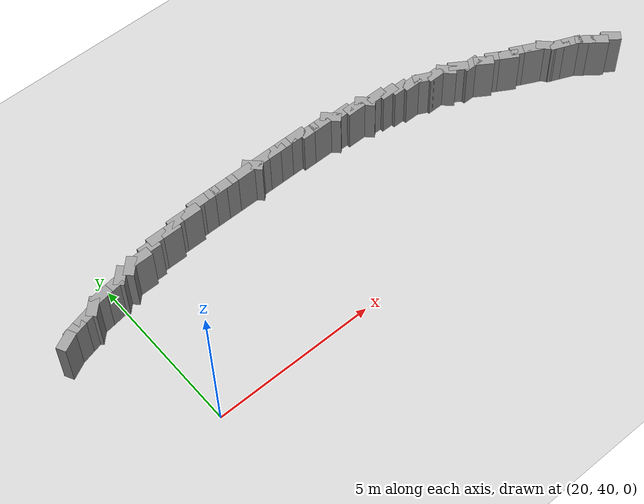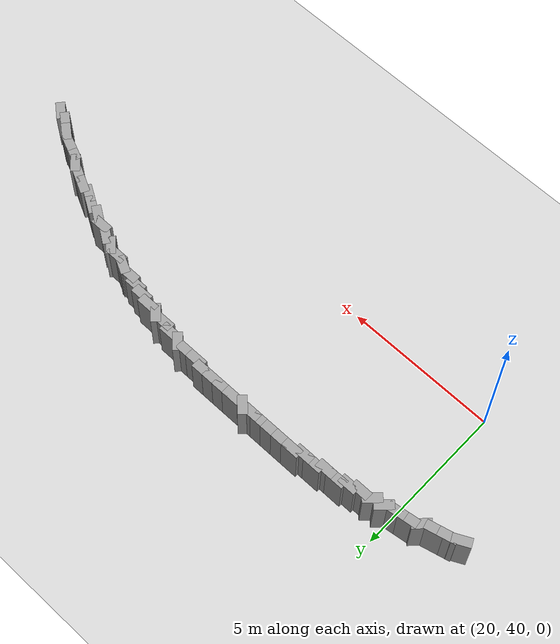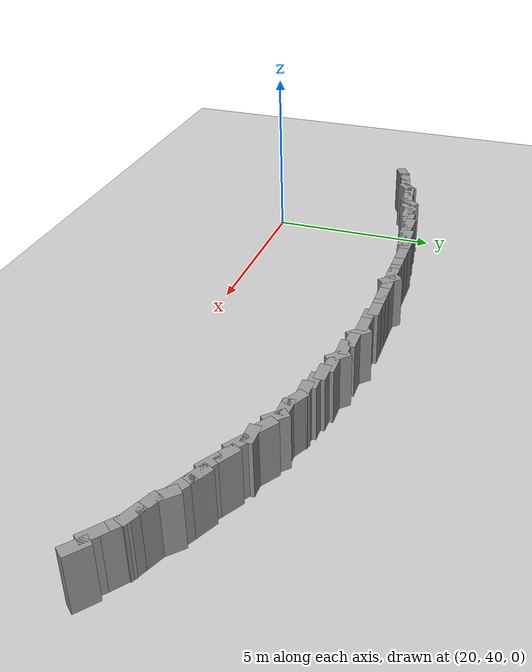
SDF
<sdf version="1.5">
 <world name="test_figure8">
  <include><uri>model://sun</uri></include>
  <include><uri>model://ground_plane</uri></include>
  <model name="curbL_397">
   <static>true</static>
   <pose>36.046 41.662 0.750 0 0 2.447</pose>
   <link name="link">
    <collision name="collision"><geometry><box><size>0.600 0.300 1.500</size></box></geometry></collision>
    <visual name="visual">
     <geometry><box><size>0.600 0.300 1.500</size></box></geometry>
     <material><ambient>0.6 0.6 0.6 1</ambient><diffuse>0.6 0.6 0.6 1</diffuse></material>
    </visual>
   </link>
  </model>
  <model name="curbL_398">
   <static>true</static>
   <pose>35.681 41.815 0.750 0 0 2.467</pose>
   <link name="link">
    <collision name="collision"><geometry><box><size>0.600 0.300 1.500</size></box></geometry></collision>
    <visual name="visual">
     <geometry><box><size>0.600 0.300 1.500</size></box></geometry>
     <material><ambient>0.6 0.6 0.6 1</ambient><diffuse>0.6 0.6 0.6 1</diffuse></material>
    </visual>
   </link>
  </model>
  <model name="curbL_399">
   <static>true</static>
   <pose>35.369 42.065 0.750 0 0 2.467</pose>
   <link name="link">
    <collision name="collision"><geometry><box><size>0.600 0.300 1.500</size></box></geometry></collision>
    <visual name="visual">
     <geometry><box><size>0.600 0.300 1.500</size></box></geometry>
     <material><ambient>0.6 0.6 0.6 1</ambient><diffuse>0.6 0.6 0.6 1</diffuse></material>
    </visual>
   </link>
  </model>
  <model name="curbL_400">
   <static>true</static>
   <pose>35.031 42.272 0.750 0 0 2.737</pose>
   <link name="link">
    <collision name="collision"><geometry><box><size>0.600 0.300 1.500</size></box></geometry></collision>
    <visual name="visual">
     <geometry><box><size>0.600 0.300 1.500</size></box></geometry>
     <material><ambient>0.6 0.6 0.6 1</ambient><diffuse>0.6 0.6 0.6 1</diffuse></material>
    </visual>
   </link>
  </model>
  <model name="curbL_401">
   <static>true</static>
   <pose>34.664 42.430 0.750 0 0 2.737</pose>
   <link name="link">
    <collision name="collision"><geometry><box><size>0.600 0.300 1.500</size></box></geometry></collision>
    <visual name="visual">
     <geometry><box><size>0.600 0.300 1.500</size></box></geometry>
     <material><ambient>0.6 0.6 0.6 1</ambient><diffuse>0.6 0.6 0.6 1</diffuse></material>
    </visual>
   </link>
  </model>
  <model name="curbL_402">
   <static>true</static>
   <pose>34.343 42.657 0.750 0 0 2.356</pose>
   <link name="link">
    <collision name="collision"><geometry><box><size>0.600 0.300 1.500</size></box></geometry></collision>
    <visual name="visual">
     <geometry><box><size>0.600 0.300 1.500</size></box></geometry>
     <material><ambient>0.6 0.6 0.6 1</ambient><diffuse>0.6 0.6 0.6 1</diffuse></material>
    </visual>
   </link>
  </model>
  <model name="curbL_403">
   <static>true</static>
   <pose>33.997 42.852 0.750 0 0 2.678</pose>
   <link name="link">
    <collision name="collision"><geometry><box><size>0.600 0.300 1.500</size></box></geometry></collision>
    <visual name="visual">
     <geometry><box><size>0.600 0.300 1.500</size></box></geometry>
     <material><ambient>0.6 0.6 0.6 1</ambient><diffuse>0.6 0.6 0.6 1</diffuse></material>
    </visual>
   </link>
  </model>
  <model name="curbL_404">
   <static>true</static>
   <pose>33.639 43.031 0.750 0 0 2.678</pose>
   <link name="link">
    <collision name="collision"><geometry><box><size>0.600 0.300 1.500</size></box></geometry></collision>
    <visual name="visual">
     <geometry><box><size>0.600 0.300 1.500</size></box></geometry>
     <material><ambient>0.6 0.6 0.6 1</ambient><diffuse>0.6 0.6 0.6 1</diffuse></material>
    </visual>
   </link>
  </model>
  <model name="curbL_405">
   <static>true</static>
   <pose>33.262 43.123 0.750 0 0 2.601</pose>
   <link name="link">
    <collision name="collision"><geometry><box><size>0.600 0.300 1.500</size></box></geometry></collision>
    <visual name="visual">
     <geometry><box><size>0.600 0.300 1.500</size></box></geometry>
     <material><ambient>0.6 0.6 0.6 1</ambient><diffuse>0.6 0.6 0.6 1</diffuse></material>
    </visual>
   </link>
  </model>
  <model name="curbL_406">
   <static>true</static>
   <pose>32.919 43.329 0.750 0 0 2.601</pose>
   <link name="link">
    <collision name="collision"><geometry><box><size>0.600 0.300 1.500</size></box></geometry></collision>
    <visual name="visual">
     <geometry><box><size>0.600 0.300 1.500</size></box></geometry>
     <material><ambient>0.6 0.6 0.6 1</ambient><diffuse>0.6 0.6 0.6 1</diffuse></material>
    </visual>
   </link>
  </model>
  <model name="curbL_407">
   <static>true</static>
   <pose>32.549 43.434 0.750 0 0 2.554</pose>
   <link name="link">
    <collision name="collision"><geometry><box><size>0.600 0.300 1.500</size></box></geometry></collision>
    <visual name="visual">
     <geometry><box><size>0.600 0.300 1.500</size></box></geometry>
     <material><ambient>0.6 0.6 0.6 1</ambient><diffuse>0.6 0.6 0.6 1</diffuse></material>
    </visual>
   </link>
  </model>
  <model name="curbL_408">
   <static>true</static>
   <pose>32.199 43.600 0.750 0 0 3.142</pose>
   <link name="link">
    <collision name="collision"><geometry><box><size>0.600 0.300 1.500</size></box></geometry></collision>
    <visual name="visual">
     <geometry><box><size>0.600 0.300 1.500</size></box></geometry>
     <material><ambient>0.6 0.6 0.6 1</ambient><diffuse>0.6 0.6 0.6 1</diffuse></material>
    </visual>
   </link>
  </model>
  <model name="curbL_409">
   <static>true</static>
   <pose>31.849 43.767 0.750 0 0 2.554</pose>
   <link name="link">
    <collision name="collision"><geometry><box><size>0.600 0.300 1.500</size></box></geometry></collision>
    <visual name="visual">
     <geometry><box><size>0.600 0.300 1.500</size></box></geometry>
     <material><ambient>0.6 0.6 0.6 1</ambient><diffuse>0.6 0.6 0.6 1</diffuse></material>
    </visual>
   </link>
  </model>
  <model name="curbL_410">
   <static>true</static>
   <pose>31.501 43.899 0.750 0 0 2.356</pose>
   <link name="link">
    <collision name="collision"><geometry><box><size>0.600 0.300 1.500</size></box></geometry></collision>
    <visual name="visual">
     <geometry><box><size>0.600 0.300 1.500</size></box></geometry>
     <material><ambient>0.6 0.6 0.6 1</ambient><diffuse>0.6 0.6 0.6 1</diffuse></material>
    </visual>
   </link>
  </model>
  <model name="curbL_411">
   <static>true</static>
   <pose>31.142 44.000 0.750 0 0 3.142</pose>
   <link name="link">
    <collision name="collision"><geometry><box><size>0.600 0.300 1.500</size></box></geometry></collision>
    <visual name="visual">
     <geometry><box><size>0.600 0.300 1.500</size></box></geometry>
     <material><ambient>0.6 0.6 0.6 1</ambient><diffuse>0.6 0.6 0.6 1</diffuse></material>
    </visual>
   </link>
  </model>
  <model name="curbL_412">
   <static>true</static>
   <pose>30.769 44.115 0.750 0 0 2.678</pose>
   <link name="link">
    <collision name="collision"><geometry><box><size>0.600 0.300 1.500</size></box></geometry></collision>
    <visual name="visual">
     <geometry><box><size>0.600 0.300 1.500</size></box></geometry>
     <material><ambient>0.6 0.6 0.6 1</ambient><diffuse>0.6 0.6 0.6 1</diffuse></material>
    </visual>
   </link>
  </model>
  <model name="curbL_413">
   <static>true</static>
   <pose>30.389 44.200 0.750 0 0 3.142</pose>
   <link name="link">
    <collision name="collision"><geometry><box><size>0.600 0.300 1.500</size></box></geometry></collision>
    <visual name="visual">
     <geometry><box><size>0.600 0.300 1.500</size></box></geometry>
     <material><ambient>0.6 0.6 0.6 1</ambient><diffuse>0.6 0.6 0.6 1</diffuse></material>
    </visual>
   </link>
  </model>
  <model name="curbL_414">
   <static>true</static>
   <pose>30.031 44.300 0.750 0 0 3.142</pose>
   <link name="link">
    <collision name="collision"><geometry><box><size>0.600 0.300 1.500</size></box></geometry></collision>
    <visual name="visual">
     <geometry><box><size>0.600 0.300 1.500</size></box></geometry>
     <material><ambient>0.6 0.6 0.6 1</ambient><diffuse>0.6 0.6 0.6 1</diffuse></material>
    </visual>
   </link>
  </model>
  <model name="curbL_415">
   <static>true</static>
   <pose>29.672 44.400 0.750 0 0 3.142</pose>
   <link name="link">
    <collision name="collision"><geometry><box><size>0.600 0.300 1.500</size></box></geometry></collision>
    <visual name="visual">
     <geometry><box><size>0.600 0.300 1.500</size></box></geometry>
     <material><ambient>0.6 0.6 0.6 1</ambient><diffuse>0.6 0.6 0.6 1</diffuse></material>
    </visual>
   </link>
  </model>
  <model name="curbL_416">
   <static>true</static>
   <pose>29.314 44.500 0.750 0 0 3.142</pose>
   <link name="link">
    <collision name="collision"><geometry><box><size>0.600 0.300 1.500</size></box></geometry></collision>
    <visual name="visual">
     <geometry><box><size>0.600 0.300 1.500</size></box></geometry>
     <material><ambient>0.6 0.6 0.6 1</ambient><diffuse>0.6 0.6 0.6 1</diffuse></material>
    </visual>
   </link>
  </model>
  <model name="curbL_417">
   <static>true</static>
   <pose>28.939 44.561 0.750 0 0 2.356</pose>
   <link name="link">
    <collision name="collision"><geometry><box><size>0.600 0.300 1.500</size></box></geometry></collision>
    <visual name="visual">
     <geometry><box><size>0.600 0.300 1.500</size></box></geometry>
     <material><ambient>0.6 0.6 0.6 1</ambient><diffuse>0.6 0.6 0.6 1</diffuse></material>
    </visual>
   </link>
  </model>
  <model name="curbL_418">
   <static>true</static>
   <pose>28.555 44.600 0.750 0 0 3.142</pose>
   <link name="link">
    <collision name="collision"><geometry><box><size>0.600 0.300 1.500</size></box></geometry></collision>
    <visual name="visual">
     <geometry><box><size>0.600 0.300 1.500</size></box></geometry>
     <material><ambient>0.6 0.6 0.6 1</ambient><diffuse>0.6 0.6 0.6 1</diffuse></material>
    </visual>
   </link>
  </model>
  <model name="curbL_419">
   <static>true</static>
   <pose>28.197 44.700 0.750 0 0 3.142</pose>
   <link name="link">
    <collision name="collision"><geometry><box><size>0.600 0.300 1.500</size></box></geometry></collision>
    <visual name="visual">
     <geometry><box><size>0.600 0.300 1.500</size></box></geometry>
     <material><ambient>0.6 0.6 0.6 1</ambient><diffuse>0.6 0.6 0.6 1</diffuse></material>
    </visual>
   </link>
  </model>
  <model name="curbL_420">
   <static>true</static>
   <pose>27.827 44.773 0.750 0 0 2.356</pose>
   <link name="link">
    <collision name="collision"><geometry><box><size>0.600 0.300 1.500</size></box></geometry></collision>
    <visual name="visual">
     <geometry><box><size>0.600 0.300 1.500</size></box></geometry>
     <material><ambient>0.6 0.6 0.6 1</ambient><diffuse>0.6 0.6 0.6 1</diffuse></material>
    </visual>
   </link>
  </model>
  <model name="curbL_421">
   <static>true</static>
   <pose>27.438 44.800 0.750 0 0 3.142</pose>
   <link name="link">
    <collision name="collision"><geometry><box><size>0.600 0.300 1.500</size></box></geometry></collision>
    <visual name="visual">
     <geometry><box><size>0.600 0.300 1.500</size></box></geometry>
     <material><ambient>0.6 0.6 0.6 1</ambient><diffuse>0.6 0.6 0.6 1</diffuse></material>
    </visual>
   </link>
  </model>
  <model name="curbL_422">
   <static>true</static>
   <pose>27.038 44.800 0.750 0 0 3.142</pose>
   <link name="link">
    <collision name="collision"><geometry><box><size>0.600 0.300 1.500</size></box></geometry></collision>
    <visual name="visual">
     <geometry><box><size>0.600 0.300 1.500</size></box></geometry>
     <material><ambient>0.6 0.6 0.6 1</ambient><diffuse>0.6 0.6 0.6 1</diffuse></material>
    </visual>
   </link>
  </model>
  <model name="curbL_423">
   <static>true</static>
   <pose>26.679 44.900 0.750 0 0 3.142</pose>
   <link name="link">
    <collision name="collision"><geometry><box><size>0.600 0.300 1.500</size></box></geometry></collision>
    <visual name="visual">
     <geometry><box><size>0.600 0.300 1.500</size></box></geometry>
     <material><ambient>0.6 0.6 0.6 1</ambient><diffuse>0.6 0.6 0.6 1</diffuse></material>
    </visual>
   </link>
  </model>
  <model name="curbL_424">
   <static>true</static>
   <pose>26.279 44.900 0.750 0 0 3.142</pose>
   <link name="link">
    <collision name="collision"><geometry><box><size>0.600 0.300 1.500</size></box></geometry></collision>
    <visual name="visual">
     <geometry><box><size>0.600 0.300 1.500</size></box></geometry>
     <material><ambient>0.6 0.6 0.6 1</ambient><diffuse>0.6 0.6 0.6 1</diffuse></material>
    </visual>
   </link>
  </model>
  <model name="curbL_425">
   <static>true</static>
   <pose>25.879 44.900 0.750 0 0 3.142</pose>
   <link name="link">
    <collision name="collision"><geometry><box><size>0.600 0.300 1.500</size></box></geometry></collision>
    <visual name="visual">
     <geometry><box><size>0.600 0.300 1.500</size></box></geometry>
     <material><ambient>0.6 0.6 0.6 1</ambient><diffuse>0.6 0.6 0.6 1</diffuse></material>
    </visual>
   </link>
  </model>
  <model name="curbL_426">
   <static>true</static>
   <pose>25.479 44.900 0.750 0 0 3.142</pose>
   <link name="link">
    <collision name="collision"><geometry><box><size>0.600 0.300 1.500</size></box></geometry></collision>
    <visual name="visual">
     <geometry><box><size>0.600 0.300 1.500</size></box></geometry>
     <material><ambient>0.6 0.6 0.6 1</ambient><diffuse>0.6 0.6 0.6 1</diffuse></material>
    </visual>
   </link>
  </model>
  <model name="curbL_427">
   <static>true</static>
   <pose>25.085 44.915 0.750 0 0 2.356</pose>
   <link name="link">
    <collision name="collision"><geometry><box><size>0.600 0.300 1.500</size></box></geometry></collision>
    <visual name="visual">
     <geometry><box><size>0.600 0.300 1.500</size></box></geometry>
     <material><ambient>0.6 0.6 0.6 1</ambient><diffuse>0.6 0.6 0.6 1</diffuse></material>
    </visual>
   </link>
  </model>
  <model name="curbL_428">
   <static>true</static>
   <pose>24.762 44.900 0.750 0 0 3.142</pose>
   <link name="link">
    <collision name="collision"><geometry><box><size>0.600 0.300 1.500</size></box></geometry></collision>
    <visual name="visual">
     <geometry><box><size>0.600 0.300 1.500</size></box></geometry>
     <material><ambient>0.6 0.6 0.6 1</ambient><diffuse>0.6 0.6 0.6 1</diffuse></material>
    </visual>
   </link>
  </model>
  <model name="curbL_429">
   <static>true</static>
   <pose>24.362 44.900 0.750 0 0 3.142</pose>
   <link name="link">
    <collision name="collision"><geometry><box><size>0.600 0.300 1.500</size></box></geometry></collision>
    <visual name="visual">
     <geometry><box><size>0.600 0.300 1.500</size></box></geometry>
     <material><ambient>0.6 0.6 0.6 1</ambient><diffuse>0.6 0.6 0.6 1</diffuse></material>
    </visual>
   </link>
  </model>
  <model name="curbL_430">
   <static>true</static>
   <pose>23.962 44.900 0.750 0 0 3.142</pose>
   <link name="link">
    <collision name="collision"><geometry><box><size>0.600 0.300 1.500</size></box></geometry></collision>
    <visual name="visual">
     <geometry><box><size>0.600 0.300 1.500</size></box></geometry>
     <material><ambient>0.6 0.6 0.6 1</ambient><diffuse>0.6 0.6 0.6 1</diffuse></material>
    </visual>
   </link>
  </model>
  <model name="curbL_431">
   <static>true</static>
   <pose>23.562 44.900 0.750 0 0 3.142</pose>
   <link name="link">
    <collision name="collision"><geometry><box><size>0.600 0.300 1.500</size></box></geometry></collision>
    <visual name="visual">
     <geometry><box><size>0.600 0.300 1.500</size></box></geometry>
     <material><ambient>0.6 0.6 0.6 1</ambient><diffuse>0.6 0.6 0.6 1</diffuse></material>
    </visual>
   </link>
  </model>
  <model name="curbL_432">
   <static>true</static>
   <pose>23.162 44.900 0.750 0 0 3.142</pose>
   <link name="link">
    <collision name="collision"><geometry><box><size>0.600 0.300 1.500</size></box></geometry></collision>
    <visual name="visual">
     <geometry><box><size>0.600 0.300 1.500</size></box></geometry>
     <material><ambient>0.6 0.6 0.6 1</ambient><diffuse>0.6 0.6 0.6 1</diffuse></material>
    </visual>
   </link>
  </model>
  <model name="curbL_433">
   <static>true</static>
   <pose>22.804 44.800 0.750 0 0 3.142</pose>
   <link name="link">
    <collision name="collision"><geometry><box><size>0.600 0.300 1.500</size></box></geometry></collision>
    <visual name="visual">
     <geometry><box><size>0.600 0.300 1.500</size></box></geometry>
     <material><ambient>0.6 0.6 0.6 1</ambient><diffuse>0.6 0.6 0.6 1</diffuse></material>
    </visual>
   </link>
  </model>
  <model name="curbL_434">
   <static>true</static>
   <pose>22.404 44.800 0.750 0 0 3.142</pose>
   <link name="link">
    <collision name="collision"><geometry><box><size>0.600 0.300 1.500</size></box></geometry></collision>
    <visual name="visual">
     <geometry><box><size>0.600 0.300 1.500</size></box></geometry>
     <material><ambient>0.6 0.6 0.6 1</ambient><diffuse>0.6 0.6 0.6 1</diffuse></material>
    </visual>
   </link>
  </model>
  <model name="curbL_435">
   <static>true</static>
   <pose>22.045 44.700 0.750 0 0 3.142</pose>
   <link name="link">
    <collision name="collision"><geometry><box><size>0.600 0.300 1.500</size></box></geometry></collision>
    <visual name="visual">
     <geometry><box><size>0.600 0.300 1.500</size></box></geometry>
     <material><ambient>0.6 0.6 0.6 1</ambient><diffuse>0.6 0.6 0.6 1</diffuse></material>
    </visual>
   </link>
  </model>
  <model name="curbL_436">
   <static>true</static>
   <pose>21.645 44.700 0.750 0 0 3.142</pose>
   <link name="link">
    <collision name="collision"><geometry><box><size>0.600 0.300 1.500</size></box></geometry></collision>
    <visual name="visual">
     <geometry><box><size>0.600 0.300 1.500</size></box></geometry>
     <material><ambient>0.6 0.6 0.6 1</ambient><diffuse>0.6 0.6 0.6 1</diffuse></material>
    </visual>
   </link>
  </model>
  <model name="curbL_437">
   <static>true</static>
   <pose>21.286 44.600 0.750 0 0 3.142</pose>
   <link name="link">
    <collision name="collision"><geometry><box><size>0.600 0.300 1.500</size></box></geometry></collision>
    <visual name="visual">
     <geometry><box><size>0.600 0.300 1.500</size></box></geometry>
     <material><ambient>0.6 0.6 0.6 1</ambient><diffuse>0.6 0.6 0.6 1</diffuse></material>
    </visual>
   </link>
  </model>
  <model name="curbL_438">
   <static>true</static>
   <pose>20.928 44.500 0.750 0 0 3.142</pose>
   <link name="link">
    <collision name="collision"><geometry><box><size>0.600 0.300 1.500</size></box></geometry></collision>
    <visual name="visual">
     <geometry><box><size>0.600 0.300 1.500</size></box></geometry>
     <material><ambient>0.6 0.6 0.6 1</ambient><diffuse>0.6 0.6 0.6 1</diffuse></material>
    </visual>
   </link>
  </model>
  <model name="curbL_439">
   <static>true</static>
   <pose>20.549 44.449 0.750 0 0 -2.356</pose>
   <link name="link">
    <collision name="collision"><geometry><box><size>0.600 0.300 1.500</size></box></geometry></collision>
    <visual name="visual">
     <geometry><box><size>0.600 0.300 1.500</size></box></geometry>
     <material><ambient>0.6 0.6 0.6 1</ambient><diffuse>0.6 0.6 0.6 1</diffuse></material>
    </visual>
   </link>
  </model>
  <model name="curbL_440">
   <static>true</static>
   <pose>20.178 44.378 0.750 0 0 -2.356</pose>
   <link name="link">
    <collision name="collision"><geometry><box><size>0.600 0.300 1.500</size></box></geometry></collision>
    <visual name="visual">
     <geometry><box><size>0.600 0.300 1.500</size></box></geometry>
     <material><ambient>0.6 0.6 0.6 1</ambient><diffuse>0.6 0.6 0.6 1</diffuse></material>
    </visual>
   </link>
  </model>
  <model name="curbL_441">
   <static>true</static>
   <pose>19.814 44.259 0.750 0 0 -3.000</pose>
   <link name="link">
    <collision name="collision"><geometry><box><size>0.600 0.300 1.500</size></box></geometry></collision>
    <visual name="visual">
     <geometry><box><size>0.600 0.300 1.500</size></box></geometry>
     <material><ambient>0.6 0.6 0.6 1</ambient><diffuse>0.6 0.6 0.6 1</diffuse></material>
    </visual>
   </link>
  </model>
  <model name="curbL_442">
   <static>true</static>
   <pose>19.418 44.203 0.750 0 0 -3.000</pose>
   <link name="link">
    <collision name="collision"><geometry><box><size>0.600 0.300 1.500</size></box></geometry></collision>
    <visual name="visual">
     <geometry><box><size>0.600 0.300 1.500</size></box></geometry>
     <material><ambient>0.6 0.6 0.6 1</ambient><diffuse>0.6 0.6 0.6 1</diffuse></material>
    </visual>
   </link>
  </model>
  <model name="curbL_443">
   <static>true</static>
   <pose>19.071 44.071 0.750 0 0 -2.356</pose>
   <link name="link">
    <collision name="collision"><geometry><box><size>0.600 0.300 1.500</size></box></geometry></collision>
    <visual name="visual">
     <geometry><box><size>0.600 0.300 1.500</size></box></geometry>
     <material><ambient>0.6 0.6 0.6 1</ambient><diffuse>0.6 0.6 0.6 1</diffuse></material>
    </visual>
   </link>
  </model>
  <model name="curbL_444">
   <static>true</static>
   <pose>18.710 43.927 0.750 0 0 -2.897</pose>
   <link name="link">
    <collision name="collision"><geometry><box><size>0.600 0.300 1.500</size></box></geometry></collision>
    <visual name="visual">
     <geometry><box><size>0.600 0.300 1.500</size></box></geometry>
     <material><ambient>0.6 0.6 0.6 1</ambient><diffuse>0.6 0.6 0.6 1</diffuse></material>
    </visual>
   </link>
  </model>
  <model name="curbL_445">
   <static>true</static>
   <pose>18.322 43.830 0.750 0 0 -2.897</pose>
   <link name="link">
    <collision name="collision"><geometry><box><size>0.600 0.300 1.500</size></box></geometry></collision>
    <visual name="visual">
     <geometry><box><size>0.600 0.300 1.500</size></box></geometry>
     <material><ambient>0.6 0.6 0.6 1</ambient><diffuse>0.6 0.6 0.6 1</diffuse></material>
    </visual>
   </link>
  </model>
  <model name="curbL_446">
   <static>true</static>
   <pose>17.954 43.677 0.750 0 0 -2.678</pose>
   <link name="link">
    <collision name="collision"><geometry><box><size>0.600 0.300 1.500</size></box></geometry></collision>
    <visual name="visual">
     <geometry><box><size>0.600 0.300 1.500</size></box></geometry>
     <material><ambient>0.6 0.6 0.6 1</ambient><diffuse>0.6 0.6 0.6 1</diffuse></material>
    </visual>
   </link>
  </model>
 </world>
</sdf>
